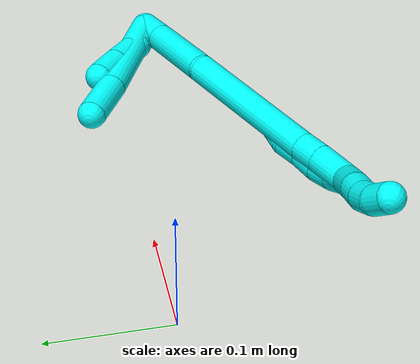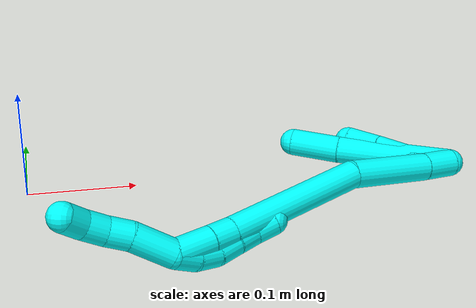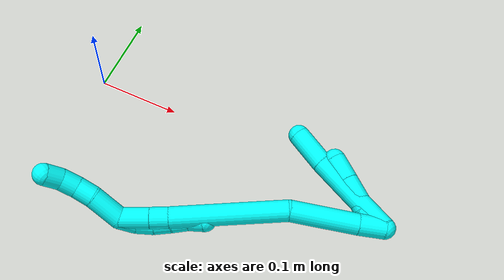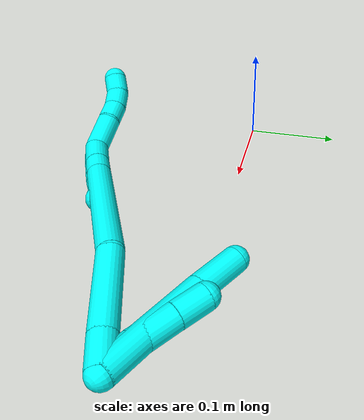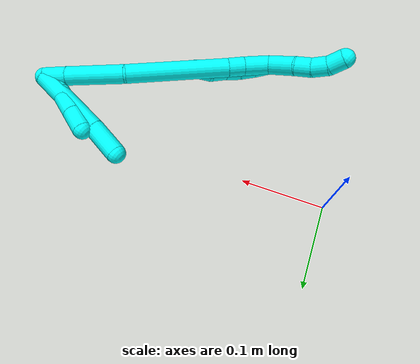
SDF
<sdf version="1.7">
 <world name="default">
  <model name="3">
   <static>0</static>
   <link name="3">
    <collision name="collision-cylinder-e_1_2_8">
     <pose>-0.000834 0.003546 -0.052122 -3.07367 -0.01596 0.461416</pose>
     <geometry><cylinder><radius>0.0125</radius><length>0.104499</length></cylinder></geometry>
     <surface>
      <friction><ode><mu>1.16</mu><mu2>1.16</mu2><slip1>0</slip1><slip2>0</slip2></ode></friction>
      <contact><ode><kp>1e+06</kp><kd>1</kd><max_vel>0</max_vel><min_depth>0.001</min_depth></ode></contact>
     </surface>
    </collision>
    <visual name="visual-cylinder-e_1_2_8">
     <pose>-0.000834 0.003546 -0.052122 -3.07367 -0.01596 0.461416</pose>
     <geometry><cylinder><radius>0.0125</radius><length>0.104499</length></cylinder></geometry>
     <material><ambient>0.003922 1 0.996078 1</ambient></material>
    </visual>
    <collision name="collision-cylinder-e_2_8_6">
     <pose>-0.002144 0.010178 -0.12678 -3.00549 -0.020954 0.30505</pose>
     <geometry><cylinder><radius>0.0125</radius><length>0.045501</length></cylinder></geometry>
     <surface>
      <friction><ode><mu>1.16</mu><mu2>1.16</mu2><slip1>0</slip1><slip2>0</slip2></ode></friction>
      <contact><ode><kp>1e+06</kp><kd>1</kd><max_vel>0</max_vel><min_depth>0.001</min_depth></ode></contact>
     </surface>
    </collision>
    <visual name="visual-cylinder-e_2_8_6">
     <pose>-0.002144 0.010178 -0.12678 -3.00549 -0.020954 0.30505</pose>
     <geometry><cylinder><radius>0.0125</radius><length>0.045501</length></cylinder></geometry>
     <material><ambient>0.003922 1 0.996078 1</ambient></material>
    </visual>
    <collision name="collision-cylinder-e_1_2_9">
     <pose>5.4e-05 5.6e-05 -0.015838 -3.13806 0.003434 -1.5422</pose>
     <geometry><cylinder><radius>0.0125</radius><length>0.031676</length></cylinder></geometry>
     <surface>
      <friction><ode><mu>1.16</mu><mu2>1.16</mu2><slip1>0</slip1><slip2>0</slip2></ode></friction>
      <contact><ode><kp>1e+06</kp><kd>1</kd><max_vel>0</max_vel><min_depth>0.001</min_depth></ode></contact>
     </surface>
    </collision>
    <visual name="visual-cylinder-e_1_2_9">
     <pose>5.4e-05 5.6e-05 -0.015838 -3.13806 0.003434 -1.5422</pose>
     <geometry><cylinder><radius>0.0125</radius><length>0.031676</length></cylinder></geometry>
     <material><ambient>0.003922 1 0.996078 1</ambient></material>
    </visual>
    <collision name="collision-cylinder-e_2_9_10">
     <pose>-0.000848 0.005886 -0.05007 -2.83742 -0.049562 0.320656</pose>
     <geometry><cylinder><radius>0.0125</radius><length>0.038607</length></cylinder></geometry>
     <surface>
      <friction><ode><mu>1.16</mu><mu2>1.16</mu2><slip1>0</slip1><slip2>0</slip2></ode></friction>
      <contact><ode><kp>1e+06</kp><kd>1</kd><max_vel>0</max_vel><min_depth>0.001</min_depth></ode></contact>
     </surface>
    </collision>
    <visual name="visual-cylinder-e_2_9_10">
     <pose>-0.000848 0.005886 -0.05007 -2.83742 -0.049562 0.320656</pose>
     <geometry><cylinder><radius>0.0125</radius><length>0.038607</length></cylinder></geometry>
     <material><ambient>0.003922 1 0.996078 1</ambient></material>
    </visual>
    <collision name="collision-cylinder-e_3_10_5">
     <pose>-0.002158 0.016009 -0.082669 -2.84452 -0.023833 0.15894</pose>
     <geometry><cylinder><radius>0.0125</radius><length>0.029717</length></cylinder></geometry>
     <surface>
      <friction><ode><mu>1.16</mu><mu2>1.16</mu2><slip1>0</slip1><slip2>0</slip2></ode></friction>
      <contact><ode><kp>1e+06</kp><kd>1</kd><max_vel>0</max_vel><min_depth>0.001</min_depth></ode></contact>
     </surface>
    </collision>
    <visual name="visual-cylinder-e_3_10_5">
     <pose>-0.002158 0.016009 -0.082669 -2.84452 -0.023833 0.15894</pose>
     <geometry><cylinder><radius>0.0125</radius><length>0.029717</length></cylinder></geometry>
     <material><ambient>0.003922 1 0.996078 1</ambient></material>
    </visual>
    <collision name="collision-cylinder-e_1_2_11">
     <pose>-0.004956 -0.009229 -0.011264 2.45521 -0.328044 -0.867519</pose>
     <geometry><cylinder><radius>0.0125</radius><length>0.030765</length></cylinder></geometry>
     <surface>
      <friction><ode><mu>1.16</mu><mu2>1.16</mu2><slip1>0</slip1><slip2>0</slip2></ode></friction>
      <contact><ode><kp>1e+06</kp><kd>1</kd><max_vel>0</max_vel><min_depth>0.001</min_depth></ode></contact>
     </surface>
    </collision>
    <visual name="visual-cylinder-e_1_2_11">
     <pose>-0.004956 -0.009229 -0.011264 2.45521 -0.328044 -0.867519</pose>
     <geometry><cylinder><radius>0.0125</radius><length>0.030765</length></cylinder></geometry>
     <material><ambient>0.003922 1 0.996078 1</ambient></material>
    </visual>
    <collision name="collision-cylinder-e_2_11_12">
     <pose>-0.02345 -0.040525 -0.052197 2.50206 -0.350977 -0.983246</pose>
     <geometry><cylinder><radius>0.0125</radius><length>0.078752</length></cylinder></geometry>
     <surface>
      <friction><ode><mu>1.16</mu><mu2>1.16</mu2><slip1>0</slip1><slip2>0</slip2></ode></friction>
      <contact><ode><kp>1e+06</kp><kd>1</kd><max_vel>0</max_vel><min_depth>0.001</min_depth></ode></contact>
     </surface>
    </collision>
    <visual name="visual-cylinder-e_2_11_12">
     <pose>-0.02345 -0.040525 -0.052197 2.50206 -0.350977 -0.983246</pose>
     <geometry><cylinder><radius>0.0125</radius><length>0.078752</length></cylinder></geometry>
     <material><ambient>0.003922 1 0.996078 1</ambient></material>
    </visual>
    <collision name="collision-cylinder-e_3_12_13">
     <pose>-0.048692 -0.113066 -0.125046 2.27849 -0.174409 -0.375238</pose>
     <geometry><cylinder><radius>0.0125</radius><length>0.134894</length></cylinder></geometry>
     <surface>
      <friction><ode><mu>1.16</mu><mu2>1.16</mu2><slip1>0</slip1><slip2>0</slip2></ode></friction>
      <contact><ode><kp>1e+06</kp><kd>1</kd><max_vel>0</max_vel><min_depth>0.001</min_depth></ode></contact>
     </surface>
    </collision>
    <visual name="visual-cylinder-e_3_12_13">
     <pose>-0.048692 -0.113066 -0.125046 2.27849 -0.174409 -0.375238</pose>
     <geometry><cylinder><radius>0.0125</radius><length>0.134894</length></cylinder></geometry>
     <material><ambient>0.003922 1 0.996078 1</ambient></material>
    </visual>
    <collision name="collision-cylinder-e_4_13_14">
     <pose>-0.062831 -0.171418 -0.175155 2.29206 -0.228034 -0.495937</pose>
     <geometry><cylinder><radius>0.0125</radius><length>0.021542</length></cylinder></geometry>
     <surface>
      <friction><ode><mu>1.16</mu><mu2>1.16</mu2><slip1>0</slip1><slip2>0</slip2></ode></friction>
      <contact><ode><kp>1e+06</kp><kd>1</kd><max_vel>0</max_vel><min_depth>0.001</min_depth></ode></contact>
     </surface>
    </collision>
    <visual name="visual-cylinder-e_4_13_14">
     <pose>-0.062831 -0.171418 -0.175155 2.29206 -0.228034 -0.495937</pose>
     <geometry><cylinder><radius>0.0125</radius><length>0.021542</length></cylinder></geometry>
     <material><ambient>0.003922 1 0.996078 1</ambient></material>
    </visual>
    <collision name="collision-cylinder-e_5_14_1">
     <pose>-0.068818 -0.19136 -0.193558 2.3312 -0.21023 -0.482361</pose>
     <geometry><cylinder><radius>0.0125</radius><length>0.034048</length></cylinder></geometry>
     <surface>
      <friction><ode><mu>1.16</mu><mu2>1.16</mu2><slip1>0</slip1><slip2>0</slip2></ode></friction>
      <contact><ode><kp>1e+06</kp><kd>1</kd><max_vel>0</max_vel><min_depth>0.001</min_depth></ode></contact>
     </surface>
    </collision>
    <visual name="visual-cylinder-e_5_14_1">
     <pose>-0.068818 -0.19136 -0.193558 2.3312 -0.21023 -0.482361</pose>
     <geometry><cylinder><radius>0.0125</radius><length>0.034048</length></cylinder></geometry>
     <material><ambient>0.003922 1 0.996078 1</ambient></material>
    </visual>
    <collision name="collision-cylinder-e_1_1_15">
     <pose>-0.083073 -0.205308 -0.220739 3.0222 -0.594825 -2.75644</pose>
     <geometry><cylinder><radius>0.0125</radius><length>0.038197</length></cylinder></geometry>
     <surface>
      <friction><ode><mu>1.16</mu><mu2>1.16</mu2><slip1>0</slip1><slip2>0</slip2></ode></friction>
      <contact><ode><kp>1e+06</kp><kd>1</kd><max_vel>0</max_vel><min_depth>0.001</min_depth></ode></contact>
     </surface>
    </collision>
    <visual name="visual-cylinder-e_1_1_15">
     <pose>-0.083073 -0.205308 -0.220739 3.0222 -0.594825 -2.75644</pose>
     <geometry><cylinder><radius>0.0125</radius><length>0.038197</length></cylinder></geometry>
     <material><ambient>0.003922 1 0.996078 1</ambient></material>
    </visual>
    <collision name="collision-cylinder-e_2_15_16">
     <pose>-0.098454 -0.209744 -0.24549 2.86659 -0.461899 -2.07779</pose>
     <geometry><cylinder><radius>0.0125</radius><length>0.020997</length></cylinder></geometry>
     <surface>
      <friction><ode><mu>1.16</mu><mu2>1.16</mu2><slip1>0</slip1><slip2>0</slip2></ode></friction>
      <contact><ode><kp>1e+06</kp><kd>1</kd><max_vel>0</max_vel><min_depth>0.001</min_depth></ode></contact>
     </surface>
    </collision>
    <visual name="visual-cylinder-e_2_15_16">
     <pose>-0.098454 -0.209744 -0.24549 2.86659 -0.461899 -2.07779</pose>
     <geometry><cylinder><radius>0.0125</radius><length>0.020997</length></cylinder></geometry>
     <material><ambient>0.003922 1 0.996078 1</ambient></material>
    </visual>
    <collision name="collision-cylinder-e_3_16_17">
     <pose>-0.10931 -0.215386 -0.262119 2.75462 -0.646237 -2.08275</pose>
     <geometry><cylinder><radius>0.0125</radius><length>0.020516</length></cylinder></geometry>
     <surface>
      <friction><ode><mu>1.16</mu><mu2>1.16</mu2><slip1>0</slip1><slip2>0</slip2></ode></friction>
      <contact><ode><kp>1e+06</kp><kd>1</kd><max_vel>0</max_vel><min_depth>0.001</min_depth></ode></contact>
     </surface>
    </collision>
    <visual name="visual-cylinder-e_3_16_17">
     <pose>-0.10931 -0.215386 -0.262119 2.75462 -0.646237 -2.08275</pose>
     <geometry><cylinder><radius>0.0125</radius><length>0.020516</length></cylinder></geometry>
     <material><ambient>0.003922 1 0.996078 1</ambient></material>
    </visual>
    <collision name="collision-cylinder-e_4_17_4">
     <pose>-0.123277 -0.222679 -0.27466 2.43845 -0.875538 -1.81216</pose>
     <geometry><cylinder><radius>0.0125</radius><length>0.02029</length></cylinder></geometry>
     <surface>
      <friction><ode><mu>1.16</mu><mu2>1.16</mu2><slip1>0</slip1><slip2>0</slip2></ode></friction>
      <contact><ode><kp>1e+06</kp><kd>1</kd><max_vel>0</max_vel><min_depth>0.001</min_depth></ode></contact>
     </surface>
    </collision>
    <visual name="visual-cylinder-e_4_17_4">
     <pose>-0.123277 -0.222679 -0.27466 2.43845 -0.875538 -1.81216</pose>
     <geometry><cylinder><radius>0.0125</radius><length>0.02029</length></cylinder></geometry>
     <material><ambient>0.003922 1 0.996078 1</ambient></material>
    </visual>
    <collision name="collision-cylinder-e_1_1_18">
     <pose>-0.066492 -0.198776 -0.198412 -0.612049 0.628405 -0.20463</pose>
     <geometry><cylinder><radius>0.0125</radius><length>0.02</length></cylinder></geometry>
     <surface>
      <friction><ode><mu>1.16</mu><mu2>1.16</mu2><slip1>0</slip1><slip2>0</slip2></ode></friction>
      <contact><ode><kp>1e+06</kp><kd>1</kd><max_vel>0</max_vel><min_depth>0.001</min_depth></ode></contact>
     </surface>
    </collision>
    <visual name="visual-cylinder-e_1_1_18">
     <pose>-0.066492 -0.198776 -0.198412 -0.612049 0.628405 -0.20463</pose>
     <geometry><cylinder><radius>0.0125</radius><length>0.02</length></cylinder></geometry>
     <material><ambient>0.003922 1 0.996078 1</ambient></material>
    </visual>
    <collision name="collision-cylinder-e_2_18_19">
     <pose>-0.056891 -0.187591 -0.185203 -0.781487 0.3815 -0.158749</pose>
     <geometry><cylinder><radius>0.0125</radius><length>0.02</length></cylinder></geometry>
     <surface>
      <friction><ode><mu>1.16</mu><mu2>1.16</mu2><slip1>0</slip1><slip2>0</slip2></ode></friction>
      <contact><ode><kp>1e+06</kp><kd>1</kd><max_vel>0</max_vel><min_depth>0.001</min_depth></ode></contact>
     </surface>
    </collision>
    <visual name="visual-cylinder-e_2_18_19">
     <pose>-0.056891 -0.187591 -0.185203 -0.781487 0.3815 -0.158749</pose>
     <geometry><cylinder><radius>0.0125</radius><length>0.02</length></cylinder></geometry>
     <material><ambient>0.003922 1 0.996078 1</ambient></material>
    </visual>
    <collision name="collision-cylinder-e_3_19_20">
     <pose>-0.052356 -0.173375 -0.17226 -0.879456 0.081267 -0.038248</pose>
     <geometry><cylinder><radius>0.0125</radius><length>0.02</length></cylinder></geometry>
     <surface>
      <friction><ode><mu>1.16</mu><mu2>1.16</mu2><slip1>0</slip1><slip2>0</slip2></ode></friction>
      <contact><ode><kp>1e+06</kp><kd>1</kd><max_vel>0</max_vel><min_depth>0.001</min_depth></ode></contact>
     </surface>
    </collision>
    <visual name="visual-cylinder-e_3_19_20">
     <pose>-0.052356 -0.173375 -0.17226 -0.879456 0.081267 -0.038248</pose>
     <geometry><cylinder><radius>0.0125</radius><length>0.02</length></cylinder></geometry>
     <material><ambient>0.003922 1 0.996078 1</ambient></material>
    </visual>
    <collision name="collision-cylinder-e_4_20_21">
     <pose>-0.049945 -0.157749 -0.160051 -0.935966 0.160548 -0.081276</pose>
     <geometry><cylinder><radius>0.0125</radius><length>0.02</length></cylinder></geometry>
     <surface>
      <friction><ode><mu>1.16</mu><mu2>1.16</mu2><slip1>0</slip1><slip2>0</slip2></ode></friction>
      <contact><ode><kp>1e+06</kp><kd>1</kd><max_vel>0</max_vel><min_depth>0.001</min_depth></ode></contact>
     </surface>
    </collision>
    <visual name="visual-cylinder-e_4_20_21">
     <pose>-0.049945 -0.157749 -0.160051 -0.935966 0.160548 -0.081276</pose>
     <geometry><cylinder><radius>0.0125</radius><length>0.02</length></cylinder></geometry>
     <material><ambient>0.003922 1 0.996078 1</ambient></material>
    </visual>
    <collision name="collision-cylinder-e_5_21_3">
     <pose>-0.048791 -0.143398 -0.146527 -0.695586 -0.044393 0.016096</pose>
     <geometry><cylinder><radius>0.0125</radius><length>0.02</length></cylinder></geometry>
     <surface>
      <friction><ode><mu>1.16</mu><mu2>1.16</mu2><slip1>0</slip1><slip2>0</slip2></ode></friction>
      <contact><ode><kp>1e+06</kp><kd>1</kd><max_vel>0</max_vel><min_depth>0.001</min_depth></ode></contact>
     </surface>
    </collision>
    <visual name="visual-cylinder-e_5_21_3">
     <pose>-0.048791 -0.143398 -0.146527 -0.695586 -0.044393 0.016096</pose>
     <geometry><cylinder><radius>0.0125</radius><length>0.02</length></cylinder></geometry>
     <material><ambient>0.003922 1 0.996078 1</ambient></material>
    </visual>
    <collision name="collision-sphere-3">
     <pose>-0.049234 -0.136996 -0.138858 0 -0 0</pose>
     <geometry><sphere><radius>0.0125</radius></sphere></geometry>
     <surface>
      <friction><ode><mu>1.16</mu><mu2>1.16</mu2><slip1>0</slip1><slip2>0</slip2></ode></friction>
      <contact><ode><kp>1e+06</kp><kd>1</kd><max_vel>0</max_vel><min_depth>0.001</min_depth></ode></contact>
     </surface>
    </collision>
    <visual name="visual-sphere-3">
     <pose>-0.049234 -0.136996 -0.138858 0 -0 0</pose>
     <geometry><sphere><radius>0.0125</radius></sphere></geometry>
     <material><ambient>0.003922 1 0.996078 1</ambient></material>
    </visual>
    <collision name="collision-sphere-21">
     <pose>-0.048347 -0.1498 -0.154197 0 -0 0</pose>
     <geometry><sphere><radius>0.0125</radius></sphere></geometry>
     <surface>
      <friction><ode><mu>1.16</mu><mu2>1.16</mu2><slip1>0</slip1><slip2>0</slip2></ode></friction>
      <contact><ode><kp>1e+06</kp><kd>1</kd><max_vel>0</max_vel><min_depth>0.001</min_depth></ode></contact>
     </surface>
    </collision>
    <visual name="visual-sphere-21">
     <pose>-0.048347 -0.1498 -0.154197 0 -0 0</pose>
     <geometry><sphere><radius>0.0125</radius></sphere></geometry>
     <material><ambient>0.003922 1 0.996078 1</ambient></material>
    </visual>
    <collision name="collision-sphere-20">
     <pose>-0.051544 -0.165697 -0.165905 0 -0 0</pose>
     <geometry><sphere><radius>0.0125</radius></sphere></geometry>
     <surface>
      <friction><ode><mu>1.16</mu><mu2>1.16</mu2><slip1>0</slip1><slip2>0</slip2></ode></friction>
      <contact><ode><kp>1e+06</kp><kd>1</kd><max_vel>0</max_vel><min_depth>0.001</min_depth></ode></contact>
     </surface>
    </collision>
    <visual name="visual-sphere-20">
     <pose>-0.051544 -0.165697 -0.165905 0 -0 0</pose>
     <geometry><sphere><radius>0.0125</radius></sphere></geometry>
     <material><ambient>0.003922 1 0.996078 1</ambient></material>
    </visual>
    <collision name="collision-sphere-19">
     <pose>-0.053168 -0.181054 -0.178614 0 -0 0</pose>
     <geometry><sphere><radius>0.0125</radius></sphere></geometry>
     <surface>
      <friction><ode><mu>1.16</mu><mu2>1.16</mu2><slip1>0</slip1><slip2>0</slip2></ode></friction>
      <contact><ode><kp>1e+06</kp><kd>1</kd><max_vel>0</max_vel><min_depth>0.001</min_depth></ode></contact>
     </surface>
    </collision>
    <visual name="visual-sphere-19">
     <pose>-0.053168 -0.181054 -0.178614 0 -0 0</pose>
     <geometry><sphere><radius>0.0125</radius></sphere></geometry>
     <material><ambient>0.003922 1 0.996078 1</ambient></material>
    </visual>
    <collision name="collision-sphere-5">
     <pose>-0.002512 0.020357 -0.096872 0 -0 0</pose>
     <geometry><sphere><radius>0.0125</radius></sphere></geometry>
     <surface>
      <friction><ode><mu>1.16</mu><mu2>1.16</mu2><slip1>0</slip1><slip2>0</slip2></ode></friction>
      <contact><ode><kp>1e+06</kp><kd>1</kd><max_vel>0</max_vel><min_depth>0.001</min_depth></ode></contact>
     </surface>
    </collision>
    <visual name="visual-sphere-5">
     <pose>-0.002512 0.020357 -0.096872 0 -0 0</pose>
     <geometry><sphere><radius>0.0125</radius></sphere></geometry>
     <material><ambient>0.003922 1 0.996078 1</ambient></material>
    </visual>
    <collision name="collision-sphere-10">
     <pose>-0.001804 0.011661 -0.068465 0 -0 0</pose>
     <geometry><sphere><radius>0.0125</radius></sphere></geometry>
     <surface>
      <friction><ode><mu>1.16</mu><mu2>1.16</mu2><slip1>0</slip1><slip2>0</slip2></ode></friction>
      <contact><ode><kp>1e+06</kp><kd>1</kd><max_vel>0</max_vel><min_depth>0.001</min_depth></ode></contact>
     </surface>
    </collision>
    <visual name="visual-sphere-10">
     <pose>-0.001804 0.011661 -0.068465 0 -0 0</pose>
     <geometry><sphere><radius>0.0125</radius></sphere></geometry>
     <material><ambient>0.003922 1 0.996078 1</ambient></material>
    </visual>
    <collision name="collision-sphere-6">
     <pose>-0.002621 0.013264 -0.149315 0 -0 0</pose>
     <geometry><sphere><radius>0.0125</radius></sphere></geometry>
     <surface>
      <friction><ode><mu>1.16</mu><mu2>1.16</mu2><slip1>0</slip1><slip2>0</slip2></ode></friction>
      <contact><ode><kp>1e+06</kp><kd>1</kd><max_vel>0</max_vel><min_depth>0.001</min_depth></ode></contact>
     </surface>
    </collision>
    <visual name="visual-sphere-6">
     <pose>-0.002621 0.013264 -0.149315 0 -0 0</pose>
     <geometry><sphere><radius>0.0125</radius></sphere></geometry>
     <material><ambient>0.003922 1 0.996078 1</ambient></material>
    </visual>
    <collision name="collision-sphere-9">
     <pose>0.000109 0.000112 -0.031675 0 -0 0</pose>
     <geometry><sphere><radius>0.0125</radius></sphere></geometry>
     <surface>
      <friction><ode><mu>1.16</mu><mu2>1.16</mu2><slip1>0</slip1><slip2>0</slip2></ode></friction>
      <contact><ode><kp>1e+06</kp><kd>1</kd><max_vel>0</max_vel><min_depth>0.001</min_depth></ode></contact>
     </surface>
    </collision>
    <visual name="visual-sphere-9">
     <pose>0.000109 0.000112 -0.031675 0 -0 0</pose>
     <geometry><sphere><radius>0.0125</radius></sphere></geometry>
     <material><ambient>0.003922 1 0.996078 1</ambient></material>
    </visual>
    <collision name="collision-sphere-2">
     <geometry><sphere><radius>0.0125</radius></sphere></geometry>
     <surface>
      <friction><ode><mu>1.16</mu><mu2>1.16</mu2><slip1>0</slip1><slip2>0</slip2></ode></friction>
      <contact><ode><kp>1e+06</kp><kd>1</kd><max_vel>0</max_vel><min_depth>0.001</min_depth></ode></contact>
     </surface>
    </collision>
    <visual name="visual-sphere-2">
     <geometry><sphere><radius>0.0125</radius></sphere></geometry>
     <material><ambient>0.003922 1 0.996078 1</ambient></material>
    </visual>
    <collision name="collision-sphere-8">
     <pose>-0.001668 0.007091 -0.104245 0 -0 0</pose>
     <geometry><sphere><radius>0.0125</radius></sphere></geometry>
     <surface>
      <friction><ode><mu>1.16</mu><mu2>1.16</mu2><slip1>0</slip1><slip2>0</slip2></ode></friction>
      <contact><ode><kp>1e+06</kp><kd>1</kd><max_vel>0</max_vel><min_depth>0.001</min_depth></ode></contact>
     </surface>
    </collision>
    <visual name="visual-sphere-8">
     <pose>-0.001668 0.007091 -0.104245 0 -0 0</pose>
     <geometry><sphere><radius>0.0125</radius></sphere></geometry>
     <material><ambient>0.003922 1 0.996078 1</ambient></material>
    </visual>
    <collision name="collision-sphere-11">
     <pose>-0.009912 -0.018457 -0.022529 0 -0 0</pose>
     <geometry><sphere><radius>0.0125</radius></sphere></geometry>
     <surface>
      <friction><ode><mu>1.16</mu><mu2>1.16</mu2><slip1>0</slip1><slip2>0</slip2></ode></friction>
      <contact><ode><kp>1e+06</kp><kd>1</kd><max_vel>0</max_vel><min_depth>0.001</min_depth></ode></contact>
     </surface>
    </collision>
    <visual name="visual-sphere-11">
     <pose>-0.009912 -0.018457 -0.022529 0 -0 0</pose>
     <geometry><sphere><radius>0.0125</radius></sphere></geometry>
     <material><ambient>0.003922 1 0.996078 1</ambient></material>
    </visual>
    <collision name="collision-sphere-12">
     <pose>-0.036988 -0.062593 -0.081865 0 -0 0</pose>
     <geometry><sphere><radius>0.0125</radius></sphere></geometry>
     <surface>
      <friction><ode><mu>1.16</mu><mu2>1.16</mu2><slip1>0</slip1><slip2>0</slip2></ode></friction>
      <contact><ode><kp>1e+06</kp><kd>1</kd><max_vel>0</max_vel><min_depth>0.001</min_depth></ode></contact>
     </surface>
    </collision>
    <visual name="visual-sphere-12">
     <pose>-0.036988 -0.062593 -0.081865 0 -0 0</pose>
     <geometry><sphere><radius>0.0125</radius></sphere></geometry>
     <material><ambient>0.003922 1 0.996078 1</ambient></material>
    </visual>
    <collision name="collision-sphere-13">
     <pose>-0.060396 -0.163538 -0.168227 0 -0 0</pose>
     <geometry><sphere><radius>0.0125</radius></sphere></geometry>
     <surface>
      <friction><ode><mu>1.16</mu><mu2>1.16</mu2><slip1>0</slip1><slip2>0</slip2></ode></friction>
      <contact><ode><kp>1e+06</kp><kd>1</kd><max_vel>0</max_vel><min_depth>0.001</min_depth></ode></contact>
     </surface>
    </collision>
    <visual name="visual-sphere-13">
     <pose>-0.060396 -0.163538 -0.168227 0 -0 0</pose>
     <geometry><sphere><radius>0.0125</radius></sphere></geometry>
     <material><ambient>0.003922 1 0.996078 1</ambient></material>
    </visual>
    <collision name="collision-sphere-14">
     <pose>-0.065266 -0.179297 -0.182084 0 -0 0</pose>
     <geometry><sphere><radius>0.0125</radius></sphere></geometry>
     <surface>
      <friction><ode><mu>1.16</mu><mu2>1.16</mu2><slip1>0</slip1><slip2>0</slip2></ode></friction>
      <contact><ode><kp>1e+06</kp><kd>1</kd><max_vel>0</max_vel><min_depth>0.001</min_depth></ode></contact>
     </surface>
    </collision>
    <visual name="visual-sphere-14">
     <pose>-0.065266 -0.179297 -0.182084 0 -0 0</pose>
     <geometry><sphere><radius>0.0125</radius></sphere></geometry>
     <material><ambient>0.003922 1 0.996078 1</ambient></material>
    </visual>
    <collision name="collision-sphere-1">
     <pose>-0.072371 -0.203423 -0.205033 0 -0 0</pose>
     <geometry><sphere><radius>0.0125</radius></sphere></geometry>
     <surface>
      <friction><ode><mu>1.16</mu><mu2>1.16</mu2><slip1>0</slip1><slip2>0</slip2></ode></friction>
      <contact><ode><kp>1e+06</kp><kd>1</kd><max_vel>0</max_vel><min_depth>0.001</min_depth></ode></contact>
     </surface>
    </collision>
    <visual name="visual-sphere-1">
     <pose>-0.072371 -0.203423 -0.205033 0 -0 0</pose>
     <geometry><sphere><radius>0.0125</radius></sphere></geometry>
     <material><ambient>0.003922 1 0.996078 1</ambient></material>
    </visual>
    <collision name="collision-sphere-18">
     <pose>-0.060614 -0.194128 -0.191791 0 -0 0</pose>
     <geometry><sphere><radius>0.0125</radius></sphere></geometry>
     <surface>
      <friction><ode><mu>1.16</mu><mu2>1.16</mu2><slip1>0</slip1><slip2>0</slip2></ode></friction>
      <contact><ode><kp>1e+06</kp><kd>1</kd><max_vel>0</max_vel><min_depth>0.001</min_depth></ode></contact>
     </surface>
    </collision>
    <visual name="visual-sphere-18">
     <pose>-0.060614 -0.194128 -0.191791 0 -0 0</pose>
     <geometry><sphere><radius>0.0125</radius></sphere></geometry>
     <material><ambient>0.003922 1 0.996078 1</ambient></material>
    </visual>
    <collision name="collision-sphere-15">
     <pose>-0.093775 -0.207192 -0.236445 0 -0 0</pose>
     <geometry><sphere><radius>0.0125</radius></sphere></geometry>
     <surface>
      <friction><ode><mu>1.16</mu><mu2>1.16</mu2><slip1>0</slip1><slip2>0</slip2></ode></friction>
      <contact><ode><kp>1e+06</kp><kd>1</kd><max_vel>0</max_vel><min_depth>0.001</min_depth></ode></contact>
     </surface>
    </collision>
    <visual name="visual-sphere-15">
     <pose>-0.093775 -0.207192 -0.236445 0 -0 0</pose>
     <geometry><sphere><radius>0.0125</radius></sphere></geometry>
     <material><ambient>0.003922 1 0.996078 1</ambient></material>
    </visual>
    <collision name="collision-sphere-16">
     <pose>-0.103132 -0.212296 -0.254535 0 -0 0</pose>
     <geometry><sphere><radius>0.0125</radius></sphere></geometry>
     <surface>
      <friction><ode><mu>1.16</mu><mu2>1.16</mu2><slip1>0</slip1><slip2>0</slip2></ode></friction>
      <contact><ode><kp>1e+06</kp><kd>1</kd><max_vel>0</max_vel><min_depth>0.001</min_depth></ode></contact>
     </surface>
    </collision>
    <visual name="visual-sphere-16">
     <pose>-0.103132 -0.212296 -0.254535 0 -0 0</pose>
     <geometry><sphere><radius>0.0125</radius></sphere></geometry>
     <material><ambient>0.003922 1 0.996078 1</ambient></material>
    </visual>
    <collision name="collision-sphere-17">
     <pose>-0.115487 -0.218477 -0.269703 0 -0 0</pose>
     <geometry><sphere><radius>0.0125</radius></sphere></geometry>
     <surface>
      <friction><ode><mu>1.16</mu><mu2>1.16</mu2><slip1>0</slip1><slip2>0</slip2></ode></friction>
      <contact><ode><kp>1e+06</kp><kd>1</kd><max_vel>0</max_vel><min_depth>0.001</min_depth></ode></contact>
     </surface>
    </collision>
    <visual name="visual-sphere-17">
     <pose>-0.115487 -0.218477 -0.269703 0 -0 0</pose>
     <geometry><sphere><radius>0.0125</radius></sphere></geometry>
     <material><ambient>0.003922 1 0.996078 1</ambient></material>
    </visual>
    <collision name="collision-sphere-4">
     <pose>-0.131067 -0.226881 -0.279617 0 -0 0</pose>
     <geometry><sphere><radius>0.0125</radius></sphere></geometry>
     <surface>
      <friction><ode><mu>1.16</mu><mu2>1.16</mu2><slip1>0</slip1><slip2>0</slip2></ode></friction>
      <contact><ode><kp>1e+06</kp><kd>1</kd><max_vel>0</max_vel><min_depth>0.001</min_depth></ode></contact>
     </surface>
    </collision>
    <visual name="visual-sphere-4">
     <pose>-0.131067 -0.226881 -0.279617 0 -0 0</pose>
     <geometry><sphere><radius>0.0125</radius></sphere></geometry>
     <material><ambient>0.003922 1 0.996078 1</ambient></material>
    </visual>
    <inertial>
     <pose>-0.037357 -0.08773 -0.119441 0 -0 0</pose>
     <mass>0.75</mass>
     <inertia>
      <ixx>0.000246</ixx>
      <ixy>0</ixy>
      <ixz>0</ixz>
      <iyy>-0.000311</iyy>
      <iyz>0</iyz>
      <izz>0.000199</izz>
     </inertia>
    </inertial>
   </link>
   <pose>0.388504 -0.043328 0.019285 1.40806 1.28468 1.01262</pose>
  </model>
 </world>
</sdf>
